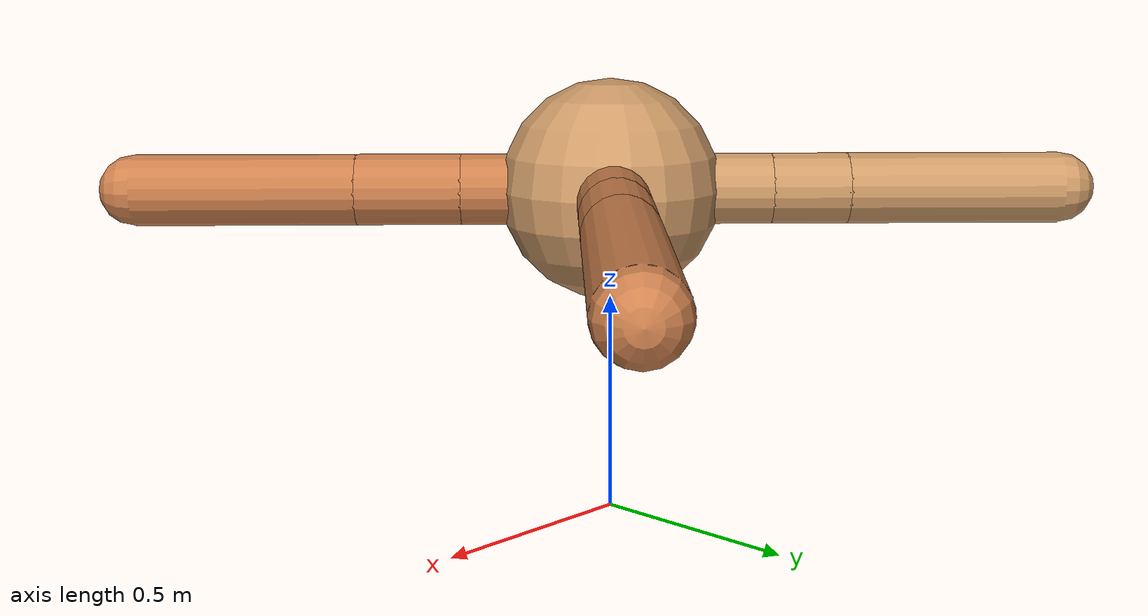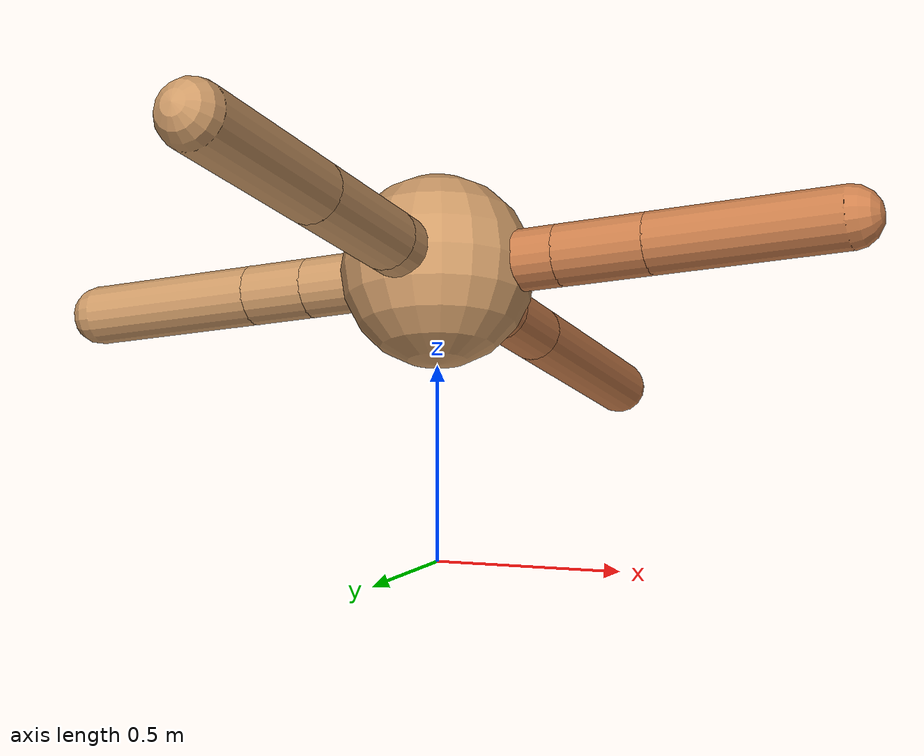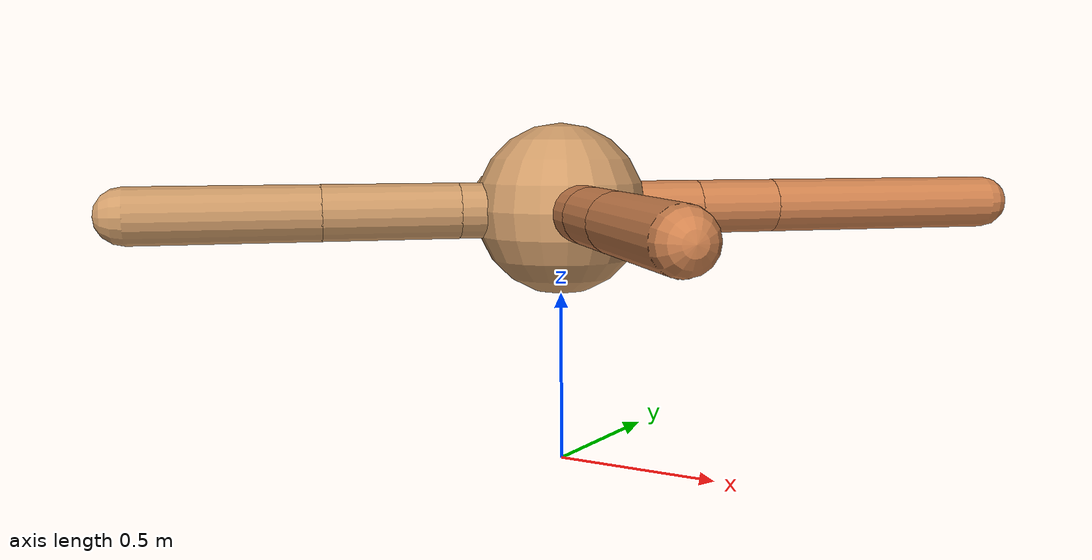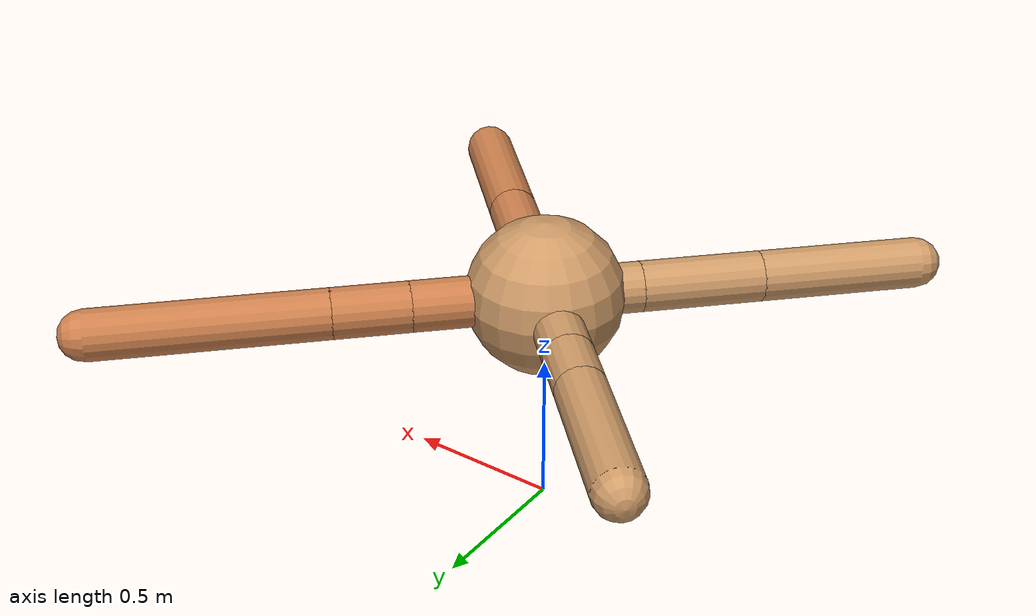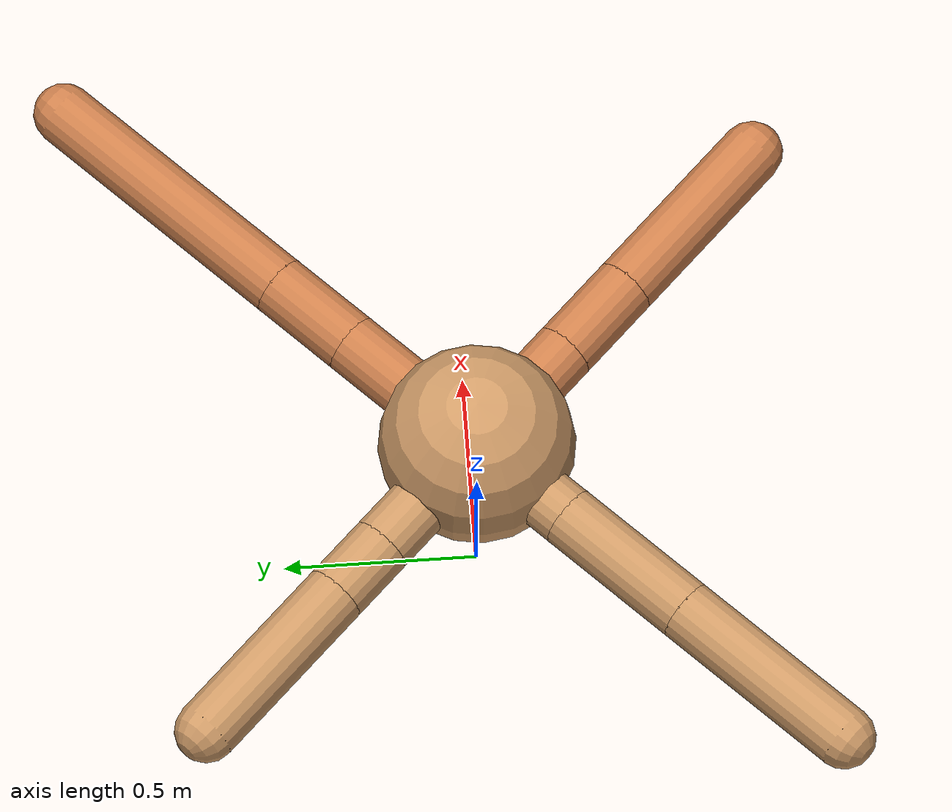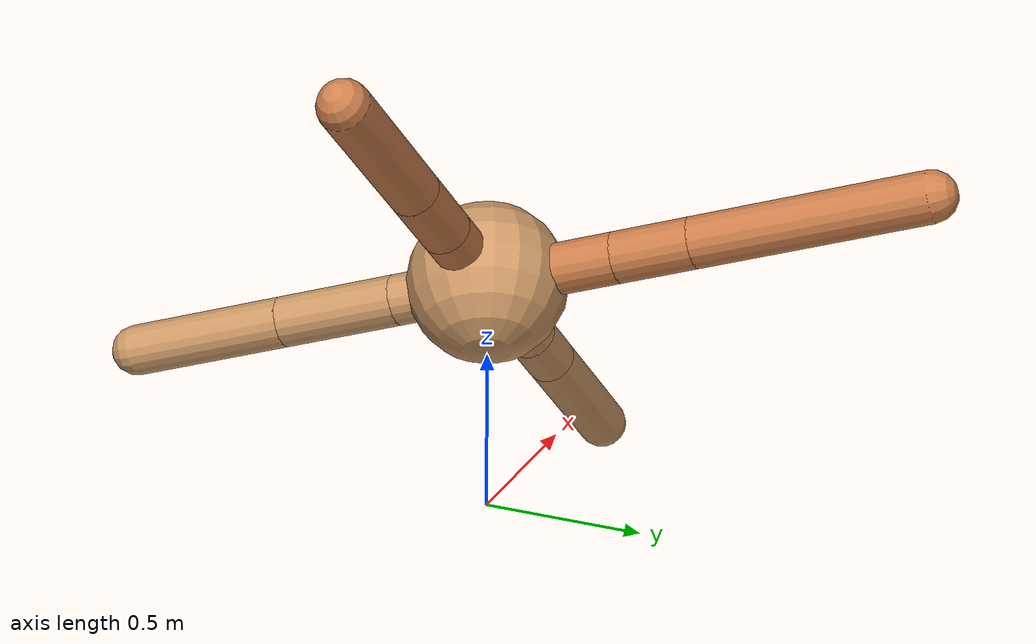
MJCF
<mujoco model="ant">
  <compiler angle="degree" coordinate="local" inertiafromgeom="true" />
  <option integrator="RK4" timestep="0.01" />
  <custom>
    <numeric data="0.0 0.0 0.55 1.0 0.0 0.0 0.0 0.0 1.0 0.0 -1.0 0.0 -1.0 0.0 1.0" name="init_qpos" />
  </custom>
  <default>
    <joint armature="1" damping="1" limited="true" />
    <geom conaffinity="0" condim="3" density="5.0" friction="1.5 0.1 0.1" margin="0.01" rgba="0.8 0.6 0.4 1" />
  </default>
  <worldbody>
    <body name="torso" pos="0 0 0.75">
      <geom name="torso_geom" pos="0 0 0" size="0.25" type="sphere" />

      <body name="front_left_leg" pos="0 0 0">
        <geom fromto="0.0 0.0 0.0 0.2960443220077454 0.2960443220077454 0.0" name="aux_1_geom" size="0.08" type="capsule" rgba=".8 .5 .3 1" />
        <body name="aux_1" pos="0.2960443220077454 0.2960443220077454 0.0">
          <joint axis="0 0 1" name="hip_1" pos="0.0 0.0 0.0" range="-40 40" type="hinge" />
          <geom fromto="0.0 0.0 0.0 0.17217739240589366 0.17217739240589366 0.0" name="left_leg_geom" size="0.08" type="capsule" rgba=".8 .5 .3 1" />
          <body pos="0.17217739240589366 0.17217739240589366 0.0" name="front_left_foot">
            <joint axis="-1 1 0" name="ankle_1" pos="0.0 0.0 0.0" range="30 100" type="hinge" />
            <geom fromto="0.0 0.0 0.0 0.5180947112404237 0.5180947112404237 0.0" name="left_ankle_geom" size="0.08" type="capsule" rgba=".8 .5 .3 1" />
          </body>
        </body>
      </body>
      <body name="front_right_leg" pos="0 0 0">
        <geom fromto="0.0 0.0 0.0 -0.2575464892658106 0.2575464892658106 0.0" name="aux_2_geom" size="0.08" type="capsule" />
        <body name="aux_2" pos="-0.2575464892658106 0.2575464892658106 0.0">
          <joint axis="0 0 1" name="hip_2" pos="0.0 0.0 0.0" range="-40 40" type="hinge" />
          <geom fromto="0.0 0.0 0.0 -0.1224277598895019 0.1224277598895019 0.0" name="right_leg_geom" size="0.08" type="capsule" />
          <body pos="-0.1224277598895019 0.1224277598895019 0.0" name="front_right_foot">
            <joint axis="1 1 0" name="ankle_2" pos="0.0 0.0 0.0" range="-100 -30" type="hinge" />
            <geom fromto="0.0 0.0 0.0 -0.34208019494199676 0.34208019494199676 0.0" name="right_ankle_geom" size="0.08" type="capsule" />
          </body>
        </body>
      </body>
      <body name="left_back_leg" pos="0 0 0">
        <geom fromto="0.0 0.0 0.0 -0.21296733560925568 -0.21296733560925568 0.0" name="aux_3_geom" size="0.08" type="capsule" />
        <body name="aux_3" pos="-0.21296733560925568 -0.21296733560925568 0.0">
          <joint axis="0 0 1" name="hip_3" pos="0.0 0.0 0.0" range="-40 40" type="hinge" />
          <geom fromto="0.0 0.0 0.0 -0.2720965009224461 -0.2720965009224461 0.0" name="back_leg_geom" size="0.08" type="capsule" />
          <body pos="-0.2720965009224461 -0.2720965009224461 0.0" name="left_back_foot">
            <joint axis="-1 1 0" name="ankle_3" pos="0.0 0.0 0.0" range="-100 -30" type="hinge" />
            <geom fromto="0.0 0.0 0.0 -0.36353912677526046 -0.36353912677526046 0.0" name="third_ankle_geom" size="0.08" type="capsule" />
          </body>
        </body>
      </body>
      <body name="right_back_leg" pos="0 0 0">
        <geom fromto="0.0 0.0 0.0 0.23855030593077534 -0.23855030593077534 0.0" name="aux_4_geom" size="0.08" type="capsule" rgba=".8 .5 .3 1" />
        <body name="aux_4" pos="0.23855030593077534 -0.23855030593077534 0.0">
          <joint axis="0 0 1" name="hip_4" pos="0.0 0.0 0.0" range="-40 40" type="hinge" />
          <geom fromto="0.0 0.0 0.0 0.16687212961416056 -0.16687212961416056 0.0" name="rightback_leg_geom" size="0.08" type="capsule" rgba=".8 .5 .3 1" />
          <body pos="0.16687212961416056 -0.16687212961416056 0.0" name="right_back_foot">
            <joint axis="1 1 0" name="ankle_4" pos="0.0 0.0 0.0" range="30 100" type="hinge" />
            <geom fromto="0.0 0.0 0.0 0.3511644784002108 -0.3511644784002108 0.0" name="fourth_ankle_geom" size="0.08" type="capsule" rgba=".8 .5 .3 1" />
          </body>
        </body>
      </body>
    </body>
  </worldbody>
  <actuator>
    <motor ctrllimited="true" ctrlrange="-1.0 1.0" joint="hip_4" gear="150" />
    <motor ctrllimited="true" ctrlrange="-1.0 1.0" joint="ankle_4" gear="150" />
    <motor ctrllimited="true" ctrlrange="-1.0 1.0" joint="hip_1" gear="150" />
    <motor ctrllimited="true" ctrlrange="-1.0 1.0" joint="ankle_1" gear="150" />
    <motor ctrllimited="true" ctrlrange="-1.0 1.0" joint="hip_2" gear="150" />
    <motor ctrllimited="true" ctrlrange="-1.0 1.0" joint="ankle_2" gear="150" />
    <motor ctrllimited="true" ctrlrange="-1.0 1.0" joint="hip_3" gear="150" />
    <motor ctrllimited="true" ctrlrange="-1.0 1.0" joint="ankle_3" gear="150" />
  </actuator>
</mujoco>
